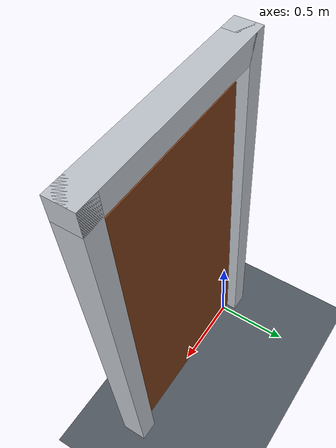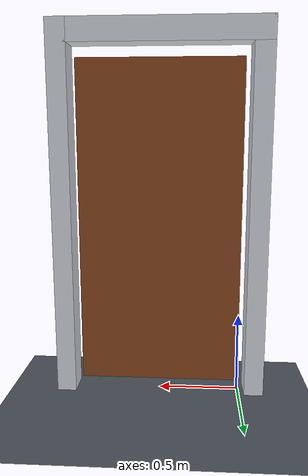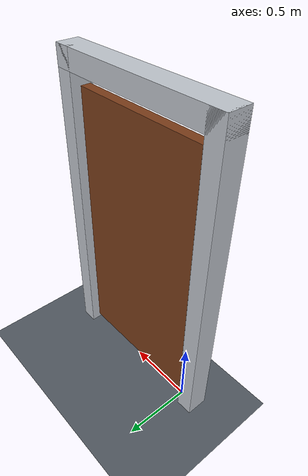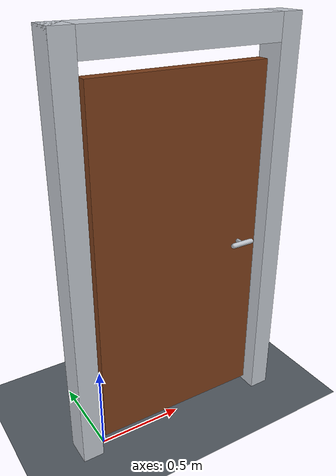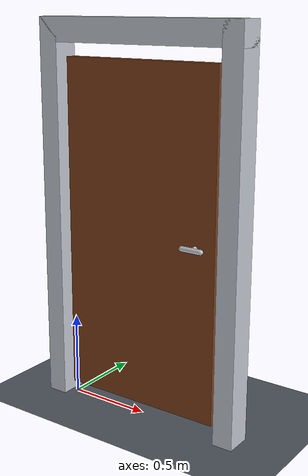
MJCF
<mujoco model="self_closing_door">
  <compiler angle="radian"/>
  <option timestep="0.002"/>

  <visual>
    <headlight ambient="0.35 0.35 0.35" diffuse="0.7 0.7 0.7" specular="0.2 0.2 0.2"/>
  </visual>

  <asset>
    <material name="floor_material" rgba="0.32 0.35 0.38 1"/>
    <material name="frame_material" rgba="0.75 0.77 0.80 1"/>
    <material name="door_material" rgba="0.48 0.24 0.10 1"/>
    <material name="handle_material" rgba="0.75 0.77 0.80 1" metallic="0.8" roughness="0.25"/>
  </asset>

  <worldbody>
    <light name="main_light" pos="1 -3 5" dir="0 0 -1" directional="true"/>
    <camera name="overview" pos="3.5 -4.5 3.0" xyaxes="0.8 0.6 0 -0.18 0.24 0.954"/>

    <geom name="floor" type="plane" size="5 5 0.1" material="floor_material"/>

    <body name="frame">
      <geom name="hinge_jamb" type="box" pos="-0.10 0 1.15" size="0.06 0.08 1.15" material="frame_material"/>
      <geom name="closing_jamb" type="box" pos="1.10 0 1.15" size="0.06 0.08 1.15" material="frame_material"/>
      <geom name="frame_header" type="box" pos="0.50 0 2.23" size="0.66 0.08 0.07" material="frame_material"/>
    </body>

    <body name="door" pos="0 0 0.08">
      <joint name="hinge" type="hinge" pos="0 0 0" axis="0 0 1" limited="true" range="0 1.45" stiffness="90" springref="0" damping="44" armature="0.01" solreflimit="0.008 1"/>
      <geom name="door_panel" type="box" pos="0.50 0 1.00" size="0.50 0.035 1.00" mass="16" material="door_material"/>
      <geom name="handle_stem" type="capsule" fromto="0.88 -0.035 1.02 0.88 -0.08 1.02" size="0.012" mass="0.03" material="handle_material"/>
      <geom name="handle_grip" type="capsule" fromto="0.82 -0.08 1.02 0.94 -0.08 1.02" size="0.015" mass="0.12" material="handle_material"/>
    </body>
  </worldbody>

  <keyframe>
    <key name="start" qpos="1.2" qvel="0"/>
  </keyframe>
</mujoco>
